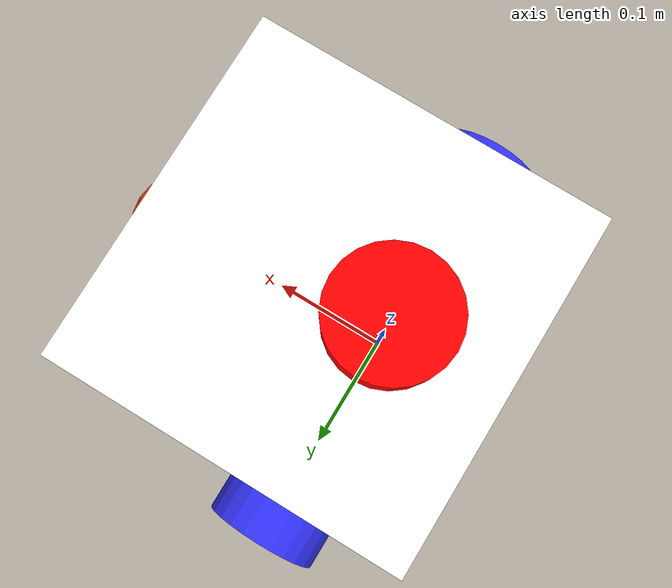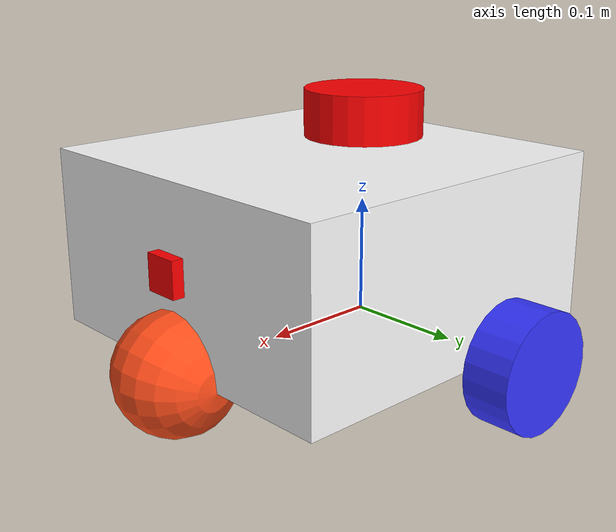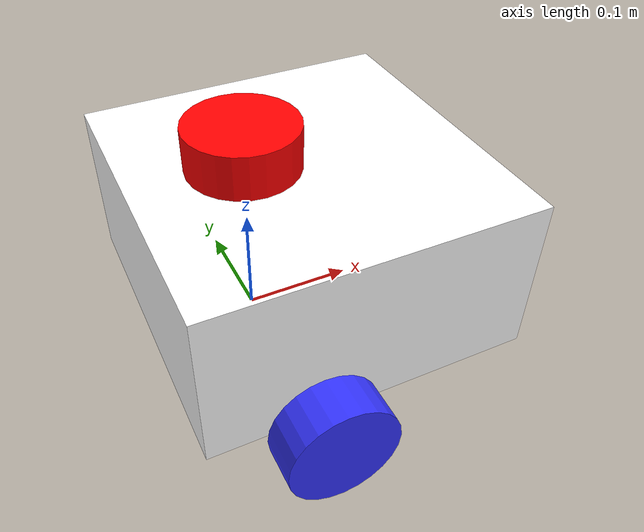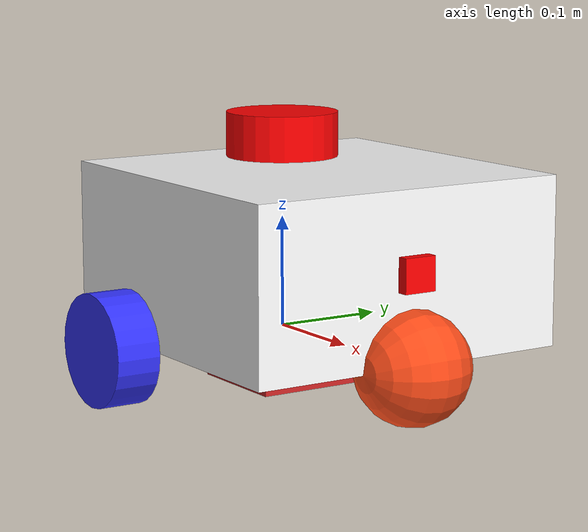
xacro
<?xml version="1.0"?>
<robot xmlns:xacro="http://www.ros.org/wiki/xacro"  name="robot_bob">

    <xacro:arg name="use_ros2_control" default="true"/>

    <xacro:include filename="robot_core.xacro" />
    <xacro:include filename="ros2_control_new.xacro" />

    <xacro:include filename="lidar.xacro"/>
    <xacro:include filename="camera.xacro"/>

</robot>

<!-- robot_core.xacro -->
<robot xmlns:xacro="http://www.ros.org/wiki/xacro" name = "bob1">

<!-- Materials -->
    <material name = "white">
        <color rgba= "1 1 1 1"/>
    </material>
    <material name = "orange">
        <color rgba= "1 0.3 0.1 1"/>
    </material>
    <material name = "blue">
        <color rgba= "0.2 0.2 1 1"/>
    </material>
    <material name = "black">
        <color rgba= "0 0 0 1"/>
    </material>
    <material name = "red">
        <color rgba= "1 0 0 1"/>
    </material>

<!-- Links -->

<!-- Base Link -->
  <link name="base_link">
    <visual>
      <origin xyz="0 0 0"/>
      <geometry>
        <box size="0.1 0.1 0.1" />
      </geometry>
    </visual>
  </link>
  <gazebo reference="base_link">
    <material>Gazebo/Red</material>
  </gazebo>

<!-- Chassis -->
    <joint name = "chassis_joint" type="fixed">
        <parent link = "base_link"/>
        <child link = "chassis"/>
        <origin xyz= "-0.1 0 0"/>
    </joint>

    <link name = "chassis">
        <visual>
            <origin xyz= "0.15 0 0.075" />
            <geometry>
                <box size= "0.3 0.3 0.15" />
            </geometry>
            <material name="white"/>
        </visual>
        <collision>
            <origin xyz= "0.15 0 0.075" />
            <geometry>
                <box size= "0.3 0.3 0.15" />
            </geometry>
        </collision>
        <inertial>
            <mass value="1.0" />
            <inertia ixx="${(1/12) * 1.0 * (0.3 *0.3 +0.15*0.15)}" ixy="0.0" ixz="0.0"
                    iyy="${(1/12) * 1.0 * (0.3 *0.3 +0.15*0.15)}" iyz="0.0"
                    izz="${(1/12) * 1.0 * (0.3 *0.3 +0.3 *0.3 )}" />
            <origin xyz = "0.15 0 0.75" rpy = "0 0 0"/>
        </inertial>
    </link>
  <gazebo reference="chassis">
    <material>Gazebo/White</material>
  </gazebo>

<!-- Left Wheel -->
    <joint name = "left_wheel_joint" type = "continuous" >
        <parent link="base_link"/>
        <child link="left_wheel"/>
        <origin xyz= "0.0 0.175 0.0" rpy="-${pi/2} 0 0" />
        <axis xyz = "0 0 1"/>
    </joint>

    <link name="left_wheel">
        <visual>
            <geometry>
                <cylinder radius="0.05" length = "0.04"/>
            </geometry>
            <material name="blue"/>
        </visual>
        <collision>
            <geometry>
                <cylinder radius="0.05" length = "0.04"/>
            </geometry>
        </collision>
        <inertial>
            <mass value="0.1" />
            <inertia ixx="${(1/12) * 0.1 * (3*.05*.05 + 0.04*0.04)}" ixy="0.0" ixz="0.0"
                    iyy="${(1/12) * 0.1 * (3*.05*.05 + 0.04*0.04)}" iyz="0.0"
                    izz="${(1/2) * 0.1 * (.05*.05)}" />
            <origin xyz = "0 0 0" rpy = "0 0 0"/>
        </inertial>
    </link>
  <gazebo reference="left_wheel">
    <material>Gazebo/Blue</material>
  </gazebo>

    <!-- Right Wheel -->
    <joint name = "right_wheel_joint" type = "continuous" >
        <parent link="base_link"/>
        <child link="right_wheel"/>
        <origin xyz= "0.0 -0.175 0.0" rpy="${pi/2} 0 0" />
        <axis xyz = "0 0 -1"/>
    </joint>

    <link name="right_wheel">
        <visual>
            <geometry>
                <cylinder radius="0.05" length = "0.04"/>
            </geometry>
            <material name="blue"/>
        </visual>
        <collision>
            <geometry>
                <cylinder radius="0.05" length = "0.04"/>
            </geometry>
        </collision>
        <inertial>
            <mass value="0.1" />
            <inertia ixx="${(1/12) * 0.1 * (3*.05*.05 + 0.04*0.04)}" ixy="0.0" ixz="0.0"
                    iyy="${(1/12) * 0.1 * (3*.05*.05 + 0.04*0.04)}" iyz="0.0"
                    izz="${(1/2) * 0.1 * (.05*.05)}" />
            <origin xyz = "0 0 0" rpy = "0 0 0"/>
        </inertial>
    </link>
  <gazebo reference="right_wheel">
    <material>Gazebo/Blue</material>
  </gazebo>

    <!-- Caster Wheel -->
    <joint name = "caster_wheel_joint" type ="fixed" >
        <parent link = "base_link"/>
        <child link = "caster" />
        <origin xyz = "0.2 0 0" rpy = "-${pi/2} 0 0" />
    </joint>

    <link name = "caster">
        <visual>
            <geometry>
                <sphere radius="0.05"/>
            </geometry>
            <material name = "orange"/>
        </visual>
        <collision>
            <geometry>
                <sphere radius="0.05"/>
            </geometry>
        </collision>
        <inertial>
            <mass value="1" />
            <inertia ixx="${(2/5) * 0.1 * (0.05*0.05)}" ixy="0.0" ixz="0.0"
                    iyy="${(2/5) * 0.1 * (0.05*0.05)}" iyz="0.0"
                    izz="${(2/5) * 0.1 * (0.05*0.05)}" />
            <origin xyz = "0 0 0" rpy = "0 0 0"/>
        </inertial>
    </link>
  <gazebo reference="caster">
    <material>Gazebo/Orange</material>
    <mu1 value="0.001"/>
    <mu2 value="0.001"/>
  </gazebo>

</robot>

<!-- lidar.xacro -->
<robot xmlns:xacro="http://www.ros.org/wiki/xacro"  name="robot_bob">

<!-- Lidar -->
    <joint name = "laser_joint" type="fixed">
        <parent link = "chassis"/>
        <child link = "laser_frame"/>
        <origin xyz= "0.1 0 0.175" rpy = "0 0 0"/>
    </joint>

    <link name="laser_frame">
        <visual>
            <geometry>
                <cylinder radius="0.05" length = "0.04"/>
            </geometry>
            <material name="red"/>
        </visual>
        <collision>
            <geometry>
                <cylinder radius="0.05" length = "0.04"/>
            </geometry>
        </collision>
        <inertial>
            <mass value="0.01" />
            <inertia ixx="0.00005" ixy="0.0" ixz="0.0"
                    iyy="0.00005" iyz="0.0"
                    izz="0.00005" />
            <origin xyz = "0 0 0" rpy = "0 0 0"/>
        </inertial>
    </link>

    <gazebo reference="laser_frame">
        <material>Gazebo/Red</material>
        <sensor name="laser" type="ray">
            <pose> 0 0 0 0 0 0 </pose>
            <visualize>false</visualize>    <!--TURNS ON OR OFF PREVIEW IN GAZEBO -->
            <update_rate>10</update_rate>
            <ray>
                <scan>
                    <horizontal>
                        <samples>360</samples>
                        <min_angle>-3.14</min_angle>
                        <max_angle>3.14</max_angle>
                    </horizontal>
                </scan>
                <range>
                    <min>0.3</min>
                    <max>12</max>
                </range>
            </ray>
            <plugin name="laser_controller" filename="libgazebo_ros_ray_sensor.so">
                <ros>
                    <argument>~/out:=scan</argument> <!-- output to this-->
                </ros>
                <output_type>sensor_msgs/LaserScan</output_type>
                <frame_name>laser_frame</frame_name>
            </plugin>
        </sensor>
    </gazebo>

</robot>

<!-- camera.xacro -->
<robot xmlns:xacro="http://www.ros.org/wiki/xacro"  name="robot_bob">

<!-- Camera Joint -->
    <joint name = "camera_joint" type="fixed">
        <parent link = "chassis"/>
        <child link = "camera_link"/>
        <origin xyz= "0.305 0 0.08" rpy = "0 0 0"/>
    </joint>
<!-- Camera Link -->
    <link name="camera_link">
        <visual>
            <geometry>
                <box size="0.01 0.03 0.03" />
            </geometry>
            <material name="red"/>
        </visual>
    </link>

<!-- Camera optical Joint Frame Rotation Fix  -->
    <joint name = "camera_optical_joint" type="fixed">
        <parent link = "camera_link"/>
        <child link = "camera_link_optical"/>
        <origin xyz= "0 0 0" rpy = "${-pi/2} 0 ${-pi/2}"/>
    </joint>
<!-- Camera optical Link Frame Rotation  -->
    <link name="camera_link_optical"></link>
    <gazebo reference="camera_link">
        <material>Gazebo/Red</material>
        <sensor name="camera" type="camera">
            <pose> 0 0 0 0 0 0 </pose>
            <visualize>true</visualize>
            <update_rate>10</update_rate>
            <camera>
                <horizontal_fov>1.089</horizontal_fov>
                <image>
                    <format>R8G8B8</format>
                    <width>640</width>
                    <height>480</height>
                </image>
                <clip>
                    <near>0.05</near>
                    <far>8.0</far>
                </clip>
            </camera>
            <plugin name="camera_controller" filename="libgazebo_ros_camera.so">
                <frame_name>camera_link_optical</frame_name>
            </plugin>
        </sensor>
    </gazebo>

</robot>
